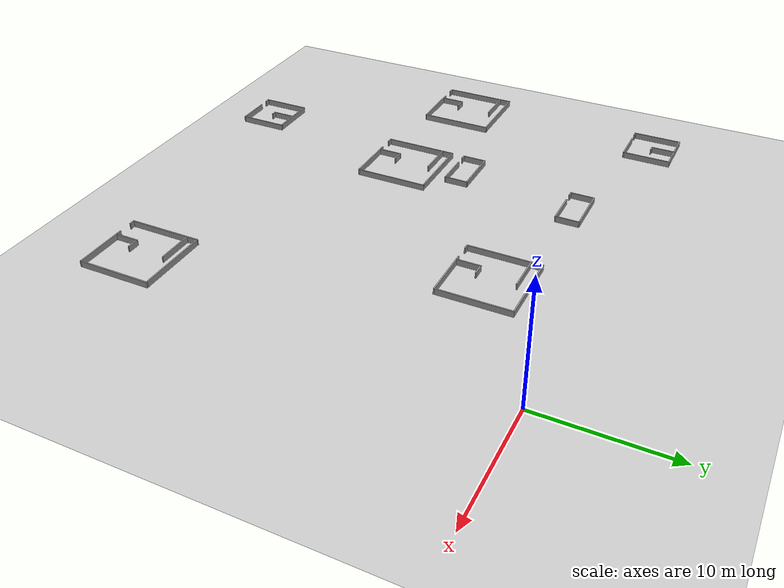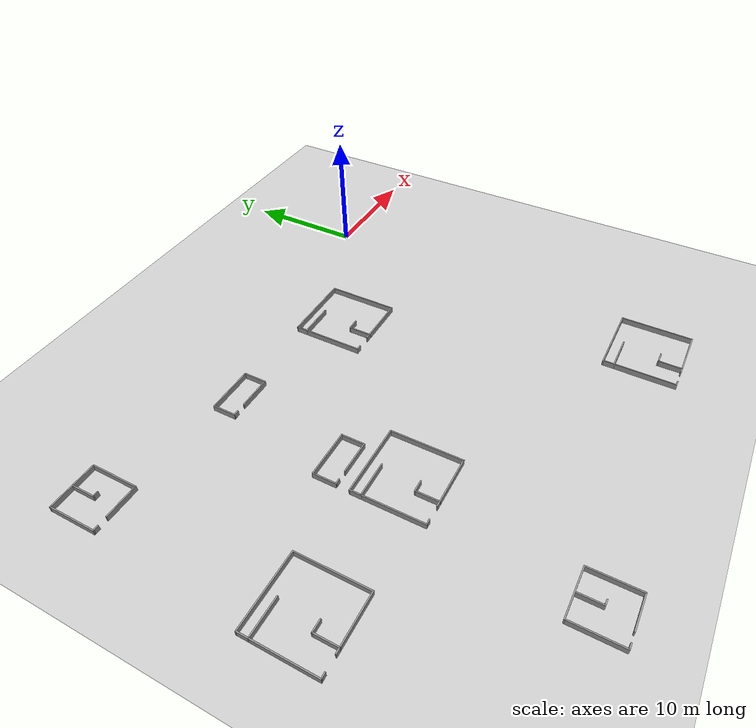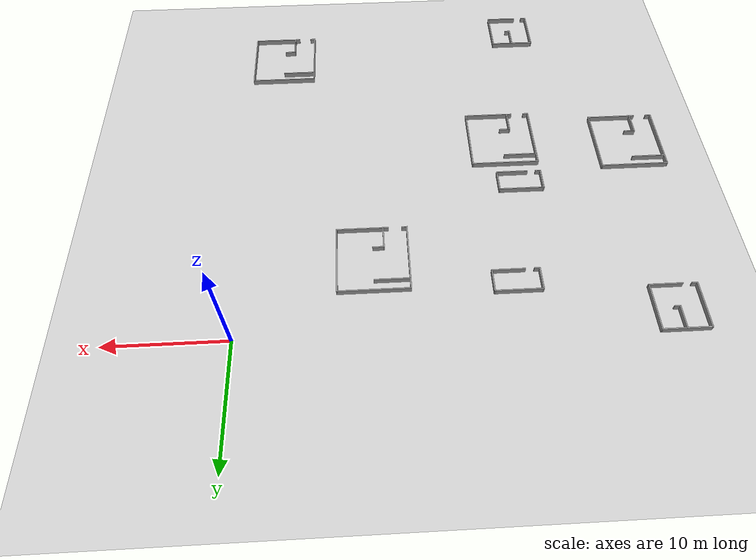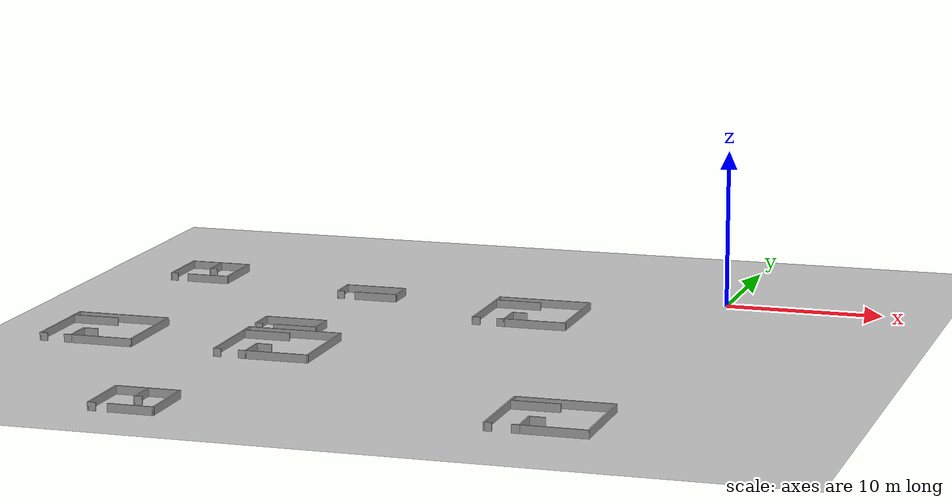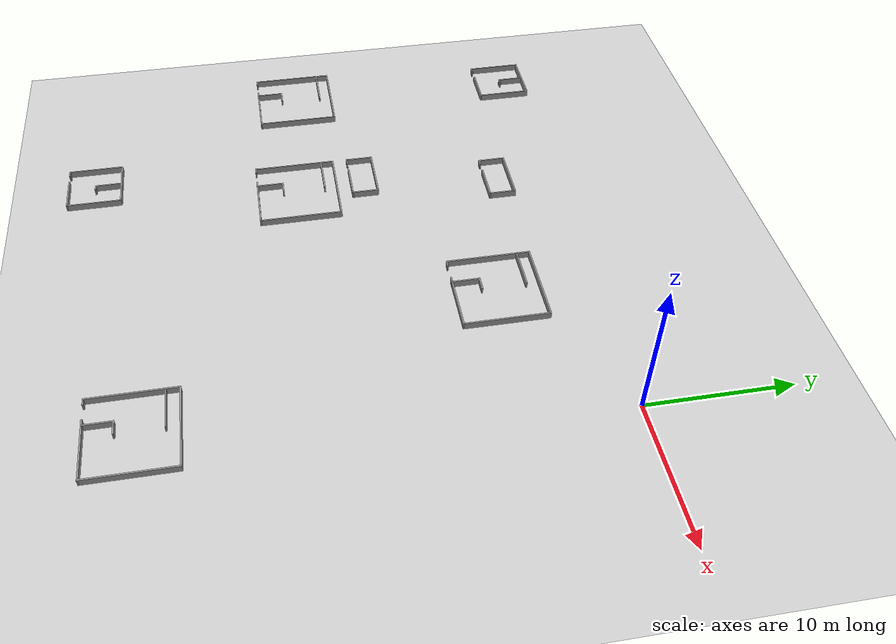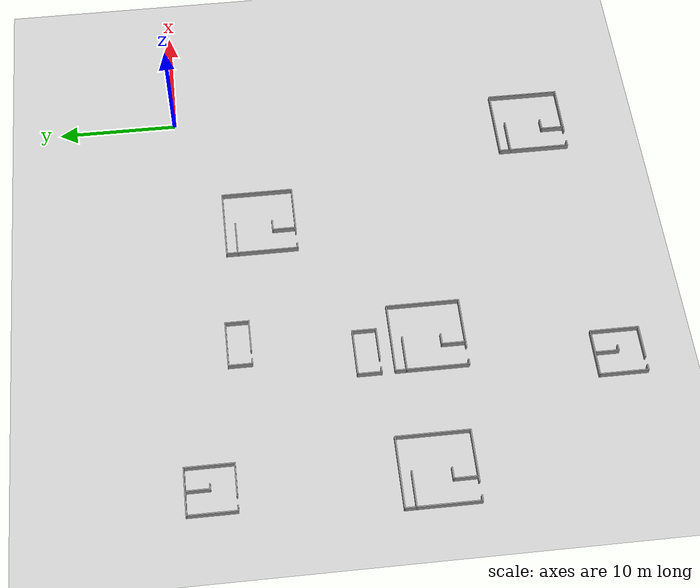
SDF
<sdf version="1.6">
 <world name="default">
  <model name="ground_plane">
   <static>1</static>
   <link name="link">
    <collision name="collision">
     <geometry><plane><normal>0 0 1</normal><size>80 80</size></plane></geometry>
     <surface>
      <contact><collide_bitmask>65535</collide_bitmask></contact>
      <friction><ode><mu>100</mu><mu2>50</mu2></ode></friction>
     </surface>
     <max_contacts>15</max_contacts>
    </collision>
    <visual name="visual">
     <cast_shadows>0</cast_shadows>
     <geometry><plane><normal>0 0 1</normal><size>80 80</size></plane></geometry>
     <material>
      <script><uri>file://media/materials/scripts/gazebo.material</uri><name>Gazebo/Grey</name></script>
     </material>
    </visual>
   </link>
  </model>
  <model name="shape4">
   <pose>-34.8 -1 0 0 -0 0</pose>
   <link name="Wall_0">
    <collision name="Wall_0_Collision">
     <geometry><box><size>4 0.1 0.5</size></box></geometry>
     <pose>0 0 0.25 0 -0 0</pose>
    </collision>
    <visual name="Wall_0_Visual">
     <pose>0 0 0.25 0 -0 0</pose>
     <geometry><box><size>4 0.1 0.5</size></box></geometry>
     <material>
      <script><uri>file://media/materials/scripts/gazebo.material</uri><name>Gazebo/Grey</name></script>
      <ambient>1 1 1 1</ambient>
     </material>
     <meta><layer>0</layer></meta>
    </visual>
    <pose>-1.95 0 0 0 -0 -1.5708</pose>
   </link>
   <link name="Wall_1">
    <collision name="Wall_1_Collision">
     <geometry><box><size>0.5 0.1 0.5</size></box></geometry>
     <pose>0 0 0.25 0 -0 0</pose>
    </collision>
    <visual name="Wall_1_Visual">
     <pose>0 0 0.25 0 -0 0</pose>
     <geometry><box><size>0.5 0.1 0.5</size></box></geometry>
     <material>
      <script><uri>file://media/materials/scripts/gazebo.material</uri><name>Gazebo/Grey</name></script>
      <ambient>1 1 1 1</ambient>
     </material>
     <meta><layer>0</layer></meta>
    </visual>
    <pose>-1.75 -1.95 0 0 -0 0</pose>
   </link>
   <link name="Wall_3">
    <collision name="Wall_3_Collision">
     <geometry><box><size>4 0.1 0.5</size></box></geometry>
     <pose>0 0 0.25 0 -0 0</pose>
    </collision>
    <visual name="Wall_3_Visual">
     <pose>0 0 0.25 0 -0 0</pose>
     <geometry><box><size>4 0.1 0.5</size></box></geometry>
     <material>
      <script><uri>file://media/materials/scripts/gazebo.material</uri><name>Gazebo/Grey</name></script>
      <ambient>1 1 1 1</ambient>
     </material>
     <meta><layer>0</layer></meta>
    </visual>
    <pose>0 1.95 0 0 -0 0</pose>
   </link>
   <link name="Wall_4">
    <collision name="Wall_4_Collision">
     <geometry><box><size>4 0.1 0.5</size></box></geometry>
     <pose>0 0 0.25 0 -0 0</pose>
    </collision>
    <visual name="Wall_4_Visual">
     <pose>0 0 0.25 0 -0 0</pose>
     <geometry><box><size>4 0.1 0.5</size></box></geometry>
     <material>
      <script><uri>file://media/materials/scripts/gazebo.material</uri><name>Gazebo/Grey</name></script>
      <ambient>1 1 1 1</ambient>
     </material>
     <meta><layer>0</layer></meta>
    </visual>
    <pose>1.95 0 0 0 -0 -1.5708</pose>
   </link>
   <link name="Wall_5">
    <collision name="Wall_5_Collision">
     <geometry><box><size>2.8 0.1 0.5</size></box></geometry>
     <pose>0 0 0.25 0 -0 0</pose>
    </collision>
    <visual name="Wall_5_Visual">
     <pose>0 0 0.25 0 -0 0</pose>
     <geometry><box><size>2.8 0.1 0.5</size></box></geometry>
     <material>
      <script><uri>file://media/materials/scripts/gazebo.material</uri><name>Gazebo/Grey</name></script>
      <ambient>1 1 1 1</ambient>
     </material>
     <meta><layer>0</layer></meta>
    </visual>
    <pose>0.6 -1.95 0 0 -0 3.14159</pose>
   </link>
   <link name="Wall_7">
    <collision name="Wall_7_Collision">
     <geometry><box><size>2 0.1 0.5</size></box></geometry>
     <pose>0 0 0.25 0 -0 0</pose>
    </collision>
    <visual name="Wall_7_Visual">
     <pose>0 0 0.25 0 -0 0</pose>
     <geometry><box><size>2 0.1 0.5</size></box></geometry>
     <material>
      <script><uri>file://media/materials/scripts/gazebo.material</uri><name>Gazebo/Grey</name></script>
      <ambient>1 1 1 1</ambient>
     </material>
     <meta><layer>0</layer></meta>
    </visual>
    <pose>0.015 0.991 0 0 -0 -1.5708</pose>
   </link>
   <link name="Wall_8">
    <collision name="Wall_8_Collision">
     <geometry><box><size>0.5 0.1 0.5</size></box></geometry>
     <pose>0 0 0.25 0 -0 0</pose>
    </collision>
    <visual name="Wall_8_Visual">
     <pose>0 0 0.25 0 -0 0</pose>
     <geometry><box><size>0.5 0.1 0.5</size></box></geometry>
     <material>
      <script><uri>file://media/materials/scripts/gazebo.material</uri><name>Gazebo/Grey</name></script>
      <ambient>1 1 1 1</ambient>
     </material>
     <meta><layer>0</layer></meta>
    </visual>
    <pose>0.215 0.041 0 0 -0 0</pose>
   </link>
   <static>1</static>
  </model>
  <model name="shape5">
   <pose>-2.9 -30.9 0 0 -0 0</pose>
   <link name="Wall_10">
    <collision name="Wall_10_Collision">
     <geometry><box><size>6 0.1 0.5</size></box></geometry>
     <pose>0 0 0.25 0 -0 0</pose>
    </collision>
    <visual name="Wall_10_Visual">
     <pose>0 0 0.25 0 -0 0</pose>
     <geometry><box><size>6 0.1 0.5</size></box></geometry>
     <material>
      <script><uri>file://media/materials/scripts/gazebo.material</uri><name>Gazebo/Grey</name></script>
      <ambient>1 1 1 1</ambient>
     </material>
     <meta><layer>0</layer></meta>
    </visual>
    <pose>-0 2.95 0 0 -0 0</pose>
   </link>
   <link name="Wall_11">
    <collision name="Wall_11_Collision">
     <geometry><box><size>6 0.1 0.5</size></box></geometry>
     <pose>0 0 0.25 0 -0 0</pose>
    </collision>
    <visual name="Wall_11_Visual">
     <pose>0 0 0.25 0 -0 0</pose>
     <geometry><box><size>6 0.1 0.5</size></box></geometry>
     <material>
      <script><uri>file://media/materials/scripts/gazebo.material</uri><name>Gazebo/Grey</name></script>
      <ambient>1 1 1 1</ambient>
     </material>
     <meta><layer>0</layer></meta>
    </visual>
    <pose>2.95 0 0 0 -0 -1.5708</pose>
   </link>
   <link name="Wall_12">
    <collision name="Wall_12_Collision">
     <geometry><box><size>4 0.1 0.5</size></box></geometry>
     <pose>0 0 0.25 0 -0 0</pose>
    </collision>
    <visual name="Wall_12_Visual">
     <pose>0 0 0.25 0 -0 0</pose>
     <geometry><box><size>4 0.1 0.5</size></box></geometry>
     <material>
      <script><uri>file://media/materials/scripts/gazebo.material</uri><name>Gazebo/Grey</name></script>
      <ambient>1 1 1 1</ambient>
     </material>
     <meta><layer>0</layer></meta>
    </visual>
    <pose>1 -2.95 0 0 -0 3.14159</pose>
   </link>
   <link name="Wall_13">
    <collision name="Wall_13_Collision">
     <geometry><box><size>2 0.1 0.5</size></box></geometry>
     <pose>0 0 0.25 0 -0 0</pose>
    </collision>
    <visual name="Wall_13_Visual">
     <pose>0 0 0.25 0 -0 0</pose>
     <geometry><box><size>2 0.1 0.5</size></box></geometry>
     <material>
      <script><uri>file://media/materials/scripts/gazebo.material</uri><name>Gazebo/Grey</name></script>
      <ambient>1 1 1 1</ambient>
     </material>
     <meta><layer>0</layer></meta>
    </visual>
    <pose>-0.95 -2 0 0 -0 1.5708</pose>
   </link>
   <link name="Wall_14">
    <collision name="Wall_14_Collision">
     <geometry><box><size>1.00029 0.1 0.5</size></box></geometry>
     <pose>0 0 0.25 0 -0 0</pose>
    </collision>
    <visual name="Wall_14_Visual">
     <pose>0 0 0.25 0 -0 0</pose>
     <geometry><box><size>1.00029 0.1 0.5</size></box></geometry>
     <material>
      <script><uri>file://media/materials/scripts/gazebo.material</uri><name>Gazebo/Grey</name></script>
      <ambient>1 1 1 1</ambient>
     </material>
     <meta><layer>0</layer></meta>
    </visual>
    <pose>-0.5 -1.05 0 0 -0 0</pose>
   </link>
   <link name="Wall_18">
    <collision name="Wall_18_Collision">
     <geometry><box><size>1 0.1 0.5</size></box></geometry>
     <pose>0 0 0.25 0 -0 0</pose>
    </collision>
    <visual name="Wall_18_Visual">
     <pose>0 0 0.25 0 -0 0</pose>
     <geometry><box><size>1 0.1 0.5</size></box></geometry>
     <material>
      <script><uri>file://media/materials/scripts/gazebo.material</uri><name>Gazebo/Grey</name></script>
      <ambient>1 1 1 1</ambient>
     </material>
     <meta><layer>0</layer></meta>
    </visual>
    <pose>-2.95 2.5 0 0 -0 -1.5708</pose>
   </link>
   <link name="Wall_19">
    <collision name="Wall_19_Collision">
     <geometry><box><size>3 0.1 0.5</size></box></geometry>
     <pose>0 0 0.25 0 -0 0</pose>
    </collision>
    <visual name="Wall_19_Visual">
     <pose>0 0 0.25 0 -0 0</pose>
     <geometry><box><size>3 0.1 0.5</size></box></geometry>
     <material>
      <script><uri>file://media/materials/scripts/gazebo.material</uri><name>Gazebo/Grey</name></script>
      <ambient>1 1 1 1</ambient>
     </material>
     <meta><layer>0</layer></meta>
    </visual>
    <pose>-1.5 2.05 0 0 -0 0</pose>
   </link>
   <link name="Wall_21">
    <collision name="Wall_21_Collision">
     <geometry><box><size>5.1 0.1 0.5</size></box></geometry>
     <pose>0 0 0.25 0 -0 0</pose>
    </collision>
    <visual name="Wall_21_Visual">
     <pose>0 0 0.25 0 -0 0</pose>
     <geometry><box><size>5.1 0.1 0.5</size></box></geometry>
     <material>
      <script><uri>file://media/materials/scripts/gazebo.material</uri><name>Gazebo/Grey</name></script>
      <ambient>1 1 1 1</ambient>
     </material>
     <meta><layer>0</layer></meta>
    </visual>
    <pose>-2.95 -0.45 0 0 -0 -1.5708</pose>
   </link>
   <link name="Wall_22">
    <collision name="Wall_22_Collision">
     <geometry><box><size>0.5 0.1 0.5</size></box></geometry>
     <pose>0 0 0.25 0 -0 0</pose>
    </collision>
    <visual name="Wall_22_Visual">
     <pose>0 0 0.25 0 -0 0</pose>
     <geometry><box><size>0.5 0.1 0.5</size></box></geometry>
     <material>
      <script><uri>file://media/materials/scripts/gazebo.material</uri><name>Gazebo/Grey</name></script>
      <ambient>1 1 1 1</ambient>
     </material>
     <meta><layer>0</layer></meta>
    </visual>
    <pose>-2.75 -2.95 0 0 -0 0</pose>
   </link>
   <link name="Wall_24">
    <collision name="Wall_24_Collision">
     <geometry><box><size>0.5 0.1 0.5</size></box></geometry>
     <pose>0 0 0.25 0 -0 0</pose>
    </collision>
    <visual name="Wall_24_Visual">
     <pose>0 0 0.25 0 -0 0</pose>
     <geometry><box><size>0.5 0.1 0.5</size></box></geometry>
     <material>
      <script><uri>file://media/materials/scripts/gazebo.material</uri><name>Gazebo/Grey</name></script>
      <ambient>1 1 1 1</ambient>
     </material>
     <meta><layer>0</layer></meta>
    </visual>
    <pose>-1.15 -2.95 0 0 -0 3.14159</pose>
   </link>
   <static>1</static>
  </model>
  <model name="shape5">
   <pose>-11 -6.6 0 0 -0 0</pose>
   <link name="Wall_10">
    <collision name="Wall_10_Collision">
     <geometry><box><size>6 0.1 0.5</size></box></geometry>
     <pose>0 0 0.25 0 -0 0</pose>
    </collision>
    <visual name="Wall_10_Visual">
     <pose>0 0 0.25 0 -0 0</pose>
     <geometry><box><size>6 0.1 0.5</size></box></geometry>
     <material>
      <script><uri>file://media/materials/scripts/gazebo.material</uri><name>Gazebo/Grey</name></script>
      <ambient>1 1 1 1</ambient>
     </material>
     <meta><layer>0</layer></meta>
    </visual>
    <pose>-0 2.95 0 0 -0 0</pose>
   </link>
   <link name="Wall_11">
    <collision name="Wall_11_Collision">
     <geometry><box><size>6 0.1 0.5</size></box></geometry>
     <pose>0 0 0.25 0 -0 0</pose>
    </collision>
    <visual name="Wall_11_Visual">
     <pose>0 0 0.25 0 -0 0</pose>
     <geometry><box><size>6 0.1 0.5</size></box></geometry>
     <material>
      <script><uri>file://media/materials/scripts/gazebo.material</uri><name>Gazebo/Grey</name></script>
      <ambient>1 1 1 1</ambient>
     </material>
     <meta><layer>0</layer></meta>
    </visual>
    <pose>2.95 0 0 0 -0 -1.5708</pose>
   </link>
   <link name="Wall_12">
    <collision name="Wall_12_Collision">
     <geometry><box><size>4 0.1 0.5</size></box></geometry>
     <pose>0 0 0.25 0 -0 0</pose>
    </collision>
    <visual name="Wall_12_Visual">
     <pose>0 0 0.25 0 -0 0</pose>
     <geometry><box><size>4 0.1 0.5</size></box></geometry>
     <material>
      <script><uri>file://media/materials/scripts/gazebo.material</uri><name>Gazebo/Grey</name></script>
      <ambient>1 1 1 1</ambient>
     </material>
     <meta><layer>0</layer></meta>
    </visual>
    <pose>1 -2.95 0 0 -0 3.14159</pose>
   </link>
   <link name="Wall_13">
    <collision name="Wall_13_Collision">
     <geometry><box><size>2 0.1 0.5</size></box></geometry>
     <pose>0 0 0.25 0 -0 0</pose>
    </collision>
    <visual name="Wall_13_Visual">
     <pose>0 0 0.25 0 -0 0</pose>
     <geometry><box><size>2 0.1 0.5</size></box></geometry>
     <material>
      <script><uri>file://media/materials/scripts/gazebo.material</uri><name>Gazebo/Grey</name></script>
      <ambient>1 1 1 1</ambient>
     </material>
     <meta><layer>0</layer></meta>
    </visual>
    <pose>-0.95 -2 0 0 -0 1.5708</pose>
   </link>
   <link name="Wall_14">
    <collision name="Wall_14_Collision">
     <geometry><box><size>1.00029 0.1 0.5</size></box></geometry>
     <pose>0 0 0.25 0 -0 0</pose>
    </collision>
    <visual name="Wall_14_Visual">
     <pose>0 0 0.25 0 -0 0</pose>
     <geometry><box><size>1.00029 0.1 0.5</size></box></geometry>
     <material>
      <script><uri>file://media/materials/scripts/gazebo.material</uri><name>Gazebo/Grey</name></script>
      <ambient>1 1 1 1</ambient>
     </material>
     <meta><layer>0</layer></meta>
    </visual>
    <pose>-0.5 -1.05 0 0 -0 0</pose>
   </link>
   <link name="Wall_18">
    <collision name="Wall_18_Collision">
     <geometry><box><size>1 0.1 0.5</size></box></geometry>
     <pose>0 0 0.25 0 -0 0</pose>
    </collision>
    <visual name="Wall_18_Visual">
     <pose>0 0 0.25 0 -0 0</pose>
     <geometry><box><size>1 0.1 0.5</size></box></geometry>
     <material>
      <script><uri>file://media/materials/scripts/gazebo.material</uri><name>Gazebo/Grey</name></script>
      <ambient>1 1 1 1</ambient>
     </material>
     <meta><layer>0</layer></meta>
    </visual>
    <pose>-2.95 2.5 0 0 -0 -1.5708</pose>
   </link>
   <link name="Wall_19">
    <collision name="Wall_19_Collision">
     <geometry><box><size>3 0.1 0.5</size></box></geometry>
     <pose>0 0 0.25 0 -0 0</pose>
    </collision>
    <visual name="Wall_19_Visual">
     <pose>0 0 0.25 0 -0 0</pose>
     <geometry><box><size>3 0.1 0.5</size></box></geometry>
     <material>
      <script><uri>file://media/materials/scripts/gazebo.material</uri><name>Gazebo/Grey</name></script>
      <ambient>1 1 1 1</ambient>
     </material>
     <meta><layer>0</layer></meta>
    </visual>
    <pose>-1.5 2.05 0 0 -0 0</pose>
   </link>
   <link name="Wall_21">
    <collision name="Wall_21_Collision">
     <geometry><box><size>5.1 0.1 0.5</size></box></geometry>
     <pose>0 0 0.25 0 -0 0</pose>
    </collision>
    <visual name="Wall_21_Visual">
     <pose>0 0 0.25 0 -0 0</pose>
     <geometry><box><size>5.1 0.1 0.5</size></box></geometry>
     <material>
      <script><uri>file://media/materials/scripts/gazebo.material</uri><name>Gazebo/Grey</name></script>
      <ambient>1 1 1 1</ambient>
     </material>
     <meta><layer>0</layer></meta>
    </visual>
    <pose>-2.95 -0.45 0 0 -0 -1.5708</pose>
   </link>
   <link name="Wall_22">
    <collision name="Wall_22_Collision">
     <geometry><box><size>0.5 0.1 0.5</size></box></geometry>
     <pose>0 0 0.25 0 -0 0</pose>
    </collision>
    <visual name="Wall_22_Visual">
     <pose>0 0 0.25 0 -0 0</pose>
     <geometry><box><size>0.5 0.1 0.5</size></box></geometry>
     <material>
      <script><uri>file://media/materials/scripts/gazebo.material</uri><name>Gazebo/Grey</name></script>
      <ambient>1 1 1 1</ambient>
     </material>
     <meta><layer>0</layer></meta>
    </visual>
    <pose>-2.75 -2.95 0 0 -0 0</pose>
   </link>
   <link name="Wall_24">
    <collision name="Wall_24_Collision">
     <geometry><box><size>0.5 0.1 0.5</size></box></geometry>
     <pose>0 0 0.25 0 -0 0</pose>
    </collision>
    <visual name="Wall_24_Visual">
     <pose>0 0 0.25 0 -0 0</pose>
     <geometry><box><size>0.5 0.1 0.5</size></box></geometry>
     <material>
      <script><uri>file://media/materials/scripts/gazebo.material</uri><name>Gazebo/Grey</name></script>
      <ambient>1 1 1 1</ambient>
     </material>
     <meta><layer>0</layer></meta>
    </visual>
    <pose>-1.15 -2.95 0 0 -0 3.14159</pose>
   </link>
   <static>1</static>
  </model>
  <model name="shape5">
   <pose>-23.3 -19.1 0 0 -0 0</pose>
   <link name="Wall_10">
    <collision name="Wall_10_Collision">
     <geometry><box><size>6 0.1 0.5</size></box></geometry>
     <pose>0 0 0.25 0 -0 0</pose>
    </collision>
    <visual name="Wall_10_Visual">
     <pose>0 0 0.25 0 -0 0</pose>
     <geometry><box><size>6 0.1 0.5</size></box></geometry>
     <material>
      <script><uri>file://media/materials/scripts/gazebo.material</uri><name>Gazebo/Grey</name></script>
      <ambient>1 1 1 1</ambient>
     </material>
     <meta><layer>0</layer></meta>
    </visual>
    <pose>-0 2.95 0 0 -0 0</pose>
   </link>
   <link name="Wall_11">
    <collision name="Wall_11_Collision">
     <geometry><box><size>6 0.1 0.5</size></box></geometry>
     <pose>0 0 0.25 0 -0 0</pose>
    </collision>
    <visual name="Wall_11_Visual">
     <pose>0 0 0.25 0 -0 0</pose>
     <geometry><box><size>6 0.1 0.5</size></box></geometry>
     <material>
      <script><uri>file://media/materials/scripts/gazebo.material</uri><name>Gazebo/Grey</name></script>
      <ambient>1 1 1 1</ambient>
     </material>
     <meta><layer>0</layer></meta>
    </visual>
    <pose>2.95 0 0 0 -0 -1.5708</pose>
   </link>
   <link name="Wall_12">
    <collision name="Wall_12_Collision">
     <geometry><box><size>4 0.1 0.5</size></box></geometry>
     <pose>0 0 0.25 0 -0 0</pose>
    </collision>
    <visual name="Wall_12_Visual">
     <pose>0 0 0.25 0 -0 0</pose>
     <geometry><box><size>4 0.1 0.5</size></box></geometry>
     <material>
      <script><uri>file://media/materials/scripts/gazebo.material</uri><name>Gazebo/Grey</name></script>
      <ambient>1 1 1 1</ambient>
     </material>
     <meta><layer>0</layer></meta>
    </visual>
    <pose>1 -2.95 0 0 -0 3.14159</pose>
   </link>
   <link name="Wall_13">
    <collision name="Wall_13_Collision">
     <geometry><box><size>2 0.1 0.5</size></box></geometry>
     <pose>0 0 0.25 0 -0 0</pose>
    </collision>
    <visual name="Wall_13_Visual">
     <pose>0 0 0.25 0 -0 0</pose>
     <geometry><box><size>2 0.1 0.5</size></box></geometry>
     <material>
      <script><uri>file://media/materials/scripts/gazebo.material</uri><name>Gazebo/Grey</name></script>
      <ambient>1 1 1 1</ambient>
     </material>
     <meta><layer>0</layer></meta>
    </visual>
    <pose>-0.95 -2 0 0 -0 1.5708</pose>
   </link>
   <link name="Wall_14">
    <collision name="Wall_14_Collision">
     <geometry><box><size>1.00029 0.1 0.5</size></box></geometry>
     <pose>0 0 0.25 0 -0 0</pose>
    </collision>
    <visual name="Wall_14_Visual">
     <pose>0 0 0.25 0 -0 0</pose>
     <geometry><box><size>1.00029 0.1 0.5</size></box></geometry>
     <material>
      <script><uri>file://media/materials/scripts/gazebo.material</uri><name>Gazebo/Grey</name></script>
      <ambient>1 1 1 1</ambient>
     </material>
     <meta><layer>0</layer></meta>
    </visual>
    <pose>-0.5 -1.05 0 0 -0 0</pose>
   </link>
   <link name="Wall_18">
    <collision name="Wall_18_Collision">
     <geometry><box><size>1 0.1 0.5</size></box></geometry>
     <pose>0 0 0.25 0 -0 0</pose>
    </collision>
    <visual name="Wall_18_Visual">
     <pose>0 0 0.25 0 -0 0</pose>
     <geometry><box><size>1 0.1 0.5</size></box></geometry>
     <material>
      <script><uri>file://media/materials/scripts/gazebo.material</uri><name>Gazebo/Grey</name></script>
      <ambient>1 1 1 1</ambient>
     </material>
     <meta><layer>0</layer></meta>
    </visual>
    <pose>-2.95 2.5 0 0 -0 -1.5708</pose>
   </link>
   <link name="Wall_19">
    <collision name="Wall_19_Collision">
     <geometry><box><size>3 0.1 0.5</size></box></geometry>
     <pose>0 0 0.25 0 -0 0</pose>
    </collision>
    <visual name="Wall_19_Visual">
     <pose>0 0 0.25 0 -0 0</pose>
     <geometry><box><size>3 0.1 0.5</size></box></geometry>
     <material>
      <script><uri>file://media/materials/scripts/gazebo.material</uri><name>Gazebo/Grey</name></script>
      <ambient>1 1 1 1</ambient>
     </material>
     <meta><layer>0</layer></meta>
    </visual>
    <pose>-1.5 2.05 0 0 -0 0</pose>
   </link>
   <link name="Wall_21">
    <collision name="Wall_21_Collision">
     <geometry><box><size>5.1 0.1 0.5</size></box></geometry>
     <pose>0 0 0.25 0 -0 0</pose>
    </collision>
    <visual name="Wall_21_Visual">
     <pose>0 0 0.25 0 -0 0</pose>
     <geometry><box><size>5.1 0.1 0.5</size></box></geometry>
     <material>
      <script><uri>file://media/materials/scripts/gazebo.material</uri><name>Gazebo/Grey</name></script>
      <ambient>1 1 1 1</ambient>
     </material>
     <meta><layer>0</layer></meta>
    </visual>
    <pose>-2.95 -0.45 0 0 -0 -1.5708</pose>
   </link>
   <link name="Wall_22">
    <collision name="Wall_22_Collision">
     <geometry><box><size>0.5 0.1 0.5</size></box></geometry>
     <pose>0 0 0.25 0 -0 0</pose>
    </collision>
    <visual name="Wall_22_Visual">
     <pose>0 0 0.25 0 -0 0</pose>
     <geometry><box><size>0.5 0.1 0.5</size></box></geometry>
     <material>
      <script><uri>file://media/materials/scripts/gazebo.material</uri><name>Gazebo/Grey</name></script>
      <ambient>1 1 1 1</ambient>
     </material>
     <meta><layer>0</layer></meta>
    </visual>
    <pose>-2.75 -2.95 0 0 -0 0</pose>
   </link>
   <link name="Wall_24">
    <collision name="Wall_24_Collision">
     <geometry><box><size>0.5 0.1 0.5</size></box></geometry>
     <pose>0 0 0.25 0 -0 0</pose>
    </collision>
    <visual name="Wall_24_Visual">
     <pose>0 0 0.25 0 -0 0</pose>
     <geometry><box><size>0.5 0.1 0.5</size></box></geometry>
     <material>
      <script><uri>file://media/materials/scripts/gazebo.material</uri><name>Gazebo/Grey</name></script>
      <ambient>1 1 1 1</ambient>
     </material>
     <meta><layer>0</layer></meta>
    </visual>
    <pose>-1.15 -2.95 0 0 -0 3.14159</pose>
   </link>
   <static>1</static>
  </model>
  <model name="shape2">
   <pose>-24.3 -14.1 0 0 -0 0</pose>
   <link name="Wall_0">
    <collision name="Wall_0_Collision">
     <geometry><box><size>3.98685 0.1 0.5</size></box></geometry>
     <pose>0 0 0.25 0 -0 0</pose>
    </collision>
    <visual name="Wall_0_Visual">
     <pose>0 0 0.25 0 -0 0</pose>
     <geometry><box><size>3.98685 0.1 0.5</size></box></geometry>
     <material>
      <script><uri>file://media/materials/scripts/gazebo.material</uri><name>Gazebo/Grey</name></script>
      <ambient>1 1 1 1</ambient>
     </material>
     <meta><layer>0</layer></meta>
    </visual>
    <pose>0.003288 0.95 0 0 -0 0</pose>
   </link>
   <link name="Wall_1">
    <collision name="Wall_1_Collision">
     <geometry><box><size>2 0.1 0.5</size></box></geometry>
     <pose>0 0 0.25 0 -0 0</pose>
    </collision>
    <visual name="Wall_1_Visual">
     <pose>0 0 0.25 0 -0 0</pose>
     <geometry><box><size>2 0.1 0.5</size></box></geometry>
     <material>
      <script><uri>file://media/materials/scripts/gazebo.material</uri><name>Gazebo/Grey</name></script>
      <ambient>1 1 1 1</ambient>
     </material>
     <meta><layer>0</layer></meta>
    </visual>
    <pose>1.94671 0 0 0 -0 -1.5708</pose>
   </link>
   <link name="Wall_2">
    <collision name="Wall_2_Collision">
     <geometry><box><size>2.8 0.1 0.5</size></box></geometry>
     <pose>0 0 0.25 0 -0 0</pose>
    </collision>
    <visual name="Wall_2_Visual">
     <pose>0 0 0.25 0 -0 0</pose>
     <geometry><box><size>2.8 0.1 0.5</size></box></geometry>
     <material>
      <script><uri>file://media/materials/scripts/gazebo.material</uri><name>Gazebo/Grey</name></script>
      <ambient>1 1 1 1</ambient>
     </material>
     <meta><layer>0</layer></meta>
    </visual>
    <pose>0.596712 -0.95 0 0 -0 3.14159</pose>
   </link>
   <link name="Wall_4">
    <collision name="Wall_4_Collision">
     <geometry><box><size>2 0.1 0.5</size></box></geometry>
     <pose>0 0 0.25 0 -0 0</pose>
    </collision>
    <visual name="Wall_4_Visual">
     <pose>0 0 0.25 0 -0 0</pose>
     <geometry><box><size>2 0.1 0.5</size></box></geometry>
     <material>
      <script><uri>file://media/materials/scripts/gazebo.material</uri><name>Gazebo/Grey</name></script>
      <ambient>1 1 1 1</ambient>
     </material>
     <meta><layer>0</layer></meta>
    </visual>
    <pose>-1.94671 0 0 0 -0 -1.5708</pose>
   </link>
   <link name="Wall_5">
    <collision name="Wall_5_Collision">
     <geometry><box><size>0.5 0.1 0.5</size></box></geometry>
     <pose>0 0 0.25 0 -0 0</pose>
    </collision>
    <visual name="Wall_5_Visual">
     <pose>0 0 0.25 0 -0 0</pose>
     <geometry><box><size>0.5 0.1 0.5</size></box></geometry>
     <material>
      <script><uri>file://media/materials/scripts/gazebo.material</uri><name>Gazebo/Grey</name></script>
      <ambient>1 1 1 1</ambient>
     </material>
     <meta><layer>0</layer></meta>
    </visual>
    <pose>-1.74671 -0.95 0 0 -0 0</pose>
   </link>
   <static>1</static>
  </model>
  <model name="shape2">
   <pose>-22.5 -4 0 0 -0 0</pose>
   <link name="Wall_0">
    <collision name="Wall_0_Collision">
     <geometry><box><size>3.98685 0.1 0.5</size></box></geometry>
     <pose>0 0 0.25 0 -0 0</pose>
    </collision>
    <visual name="Wall_0_Visual">
     <pose>0 0 0.25 0 -0 0</pose>
     <geometry><box><size>3.98685 0.1 0.5</size></box></geometry>
     <material>
      <script><uri>file://media/materials/scripts/gazebo.material</uri><name>Gazebo/Grey</name></script>
      <ambient>1 1 1 1</ambient>
     </material>
     <meta><layer>0</layer></meta>
    </visual>
    <pose>0.003288 0.95 0 0 -0 0</pose>
   </link>
   <link name="Wall_1">
    <collision name="Wall_1_Collision">
     <geometry><box><size>2 0.1 0.5</size></box></geometry>
     <pose>0 0 0.25 0 -0 0</pose>
    </collision>
    <visual name="Wall_1_Visual">
     <pose>0 0 0.25 0 -0 0</pose>
     <geometry><box><size>2 0.1 0.5</size></box></geometry>
     <material>
      <script><uri>file://media/materials/scripts/gazebo.material</uri><name>Gazebo/Grey</name></script>
      <ambient>1 1 1 1</ambient>
     </material>
     <meta><layer>0</layer></meta>
    </visual>
    <pose>1.94671 0 0 0 -0 -1.5708</pose>
   </link>
   <link name="Wall_2">
    <collision name="Wall_2_Collision">
     <geometry><box><size>2.8 0.1 0.5</size></box></geometry>
     <pose>0 0 0.25 0 -0 0</pose>
    </collision>
    <visual name="Wall_2_Visual">
     <pose>0 0 0.25 0 -0 0</pose>
     <geometry><box><size>2.8 0.1 0.5</size></box></geometry>
     <material>
      <script><uri>file://media/materials/scripts/gazebo.material</uri><name>Gazebo/Grey</name></script>
      <ambient>1 1 1 1</ambient>
     </material>
     <meta><layer>0</layer></meta>
    </visual>
    <pose>0.596712 -0.95 0 0 -0 3.14159</pose>
   </link>
   <link name="Wall_4">
    <collision name="Wall_4_Collision">
     <geometry><box><size>2 0.1 0.5</size></box></geometry>
     <pose>0 0 0.25 0 -0 0</pose>
    </collision>
    <visual name="Wall_4_Visual">
     <pose>0 0 0.25 0 -0 0</pose>
     <geometry><box><size>2 0.1 0.5</size></box></geometry>
     <material>
      <script><uri>file://media/materials/scripts/gazebo.material</uri><name>Gazebo/Grey</name></script>
      <ambient>1 1 1 1</ambient>
     </material>
     <meta><layer>0</layer></meta>
    </visual>
    <pose>-1.94671 0 0 0 -0 -1.5708</pose>
   </link>
   <link name="Wall_5">
    <collision name="Wall_5_Collision">
     <geometry><box><size>0.5 0.1 0.5</size></box></geometry>
     <pose>0 0 0.25 0 -0 0</pose>
    </collision>
    <visual name="Wall_5_Visual">
     <pose>0 0 0.25 0 -0 0</pose>
     <geometry><box><size>0.5 0.1 0.5</size></box></geometry>
     <material>
      <script><uri>file://media/materials/scripts/gazebo.material</uri><name>Gazebo/Grey</name></script>
      <ambient>1 1 1 1</ambient>
     </material>
     <meta><layer>0</layer></meta>
    </visual>
    <pose>-1.74671 -0.95 0 0 -0 0</pose>
   </link>
   <static>1</static>
  </model>
  <model name="shape4">
   <pose>-26.3 -34.1 0 0 -0 0</pose>
   <link name="Wall_0">
    <collision name="Wall_0_Collision">
     <geometry><box><size>4 0.1 0.5</size></box></geometry>
     <pose>0 0 0.25 0 -0 0</pose>
    </collision>
    <visual name="Wall_0_Visual">
     <pose>0 0 0.25 0 -0 0</pose>
     <geometry><box><size>4 0.1 0.5</size></box></geometry>
     <material>
      <script><uri>file://media/materials/scripts/gazebo.material</uri><name>Gazebo/Grey</name></script>
      <ambient>1 1 1 1</ambient>
     </material>
     <meta><layer>0</layer></meta>
    </visual>
    <pose>-1.95 0 0 0 -0 -1.5708</pose>
   </link>
   <link name="Wall_1">
    <collision name="Wall_1_Collision">
     <geometry><box><size>0.5 0.1 0.5</size></box></geometry>
     <pose>0 0 0.25 0 -0 0</pose>
    </collision>
    <visual name="Wall_1_Visual">
     <pose>0 0 0.25 0 -0 0</pose>
     <geometry><box><size>0.5 0.1 0.5</size></box></geometry>
     <material>
      <script><uri>file://media/materials/scripts/gazebo.material</uri><name>Gazebo/Grey</name></script>
      <ambient>1 1 1 1</ambient>
     </material>
     <meta><layer>0</layer></meta>
    </visual>
    <pose>-1.75 -1.95 0 0 -0 0</pose>
   </link>
   <link name="Wall_3">
    <collision name="Wall_3_Collision">
     <geometry><box><size>4 0.1 0.5</size></box></geometry>
     <pose>0 0 0.25 0 -0 0</pose>
    </collision>
    <visual name="Wall_3_Visual">
     <pose>0 0 0.25 0 -0 0</pose>
     <geometry><box><size>4 0.1 0.5</size></box></geometry>
     <material>
      <script><uri>file://media/materials/scripts/gazebo.material</uri><name>Gazebo/Grey</name></script>
      <ambient>1 1 1 1</ambient>
     </material>
     <meta><layer>0</layer></meta>
    </visual>
    <pose>0 1.95 0 0 -0 0</pose>
   </link>
   <link name="Wall_4">
    <collision name="Wall_4_Collision">
     <geometry><box><size>4 0.1 0.5</size></box></geometry>
     <pose>0 0 0.25 0 -0 0</pose>
    </collision>
    <visual name="Wall_4_Visual">
     <pose>0 0 0.25 0 -0 0</pose>
     <geometry><box><size>4 0.1 0.5</size></box></geometry>
     <material>
      <script><uri>file://media/materials/scripts/gazebo.material</uri><name>Gazebo/Grey</name></script>
      <ambient>1 1 1 1</ambient>
     </material>
     <meta><layer>0</layer></meta>
    </visual>
    <pose>1.95 0 0 0 -0 -1.5708</pose>
   </link>
   <link name="Wall_5">
    <collision name="Wall_5_Collision">
     <geometry><box><size>2.8 0.1 0.5</size></box></geometry>
     <pose>0 0 0.25 0 -0 0</pose>
    </collision>
    <visual name="Wall_5_Visual">
     <pose>0 0 0.25 0 -0 0</pose>
     <geometry><box><size>2.8 0.1 0.5</size></box></geometry>
     <material>
      <script><uri>file://media/materials/scripts/gazebo.material</uri><name>Gazebo/Grey</name></script>
      <ambient>1 1 1 1</ambient>
     </material>
     <meta><layer>0</layer></meta>
    </visual>
    <pose>0.6 -1.95 0 0 -0 3.14159</pose>
   </link>
   <link name="Wall_7">
    <collision name="Wall_7_Collision">
     <geometry><box><size>2 0.1 0.5</size></box></geometry>
     <pose>0 0 0.25 0 -0 0</pose>
    </collision>
    <visual name="Wall_7_Visual">
     <pose>0 0 0.25 0 -0 0</pose>
     <geometry><box><size>2 0.1 0.5</size></box></geometry>
     <material>
      <script><uri>file://media/materials/scripts/gazebo.material</uri><name>Gazebo/Grey</name></script>
      <ambient>1 1 1 1</ambient>
     </material>
     <meta><layer>0</layer></meta>
    </visual>
    <pose>0.015 0.991 0 0 -0 -1.5708</pose>
   </link>
   <link name="Wall_8">
    <collision name="Wall_8_Collision">
     <geometry><box><size>0.5 0.1 0.5</size></box></geometry>
     <pose>0 0 0.25 0 -0 0</pose>
    </collision>
    <visual name="Wall_8_Visual">
     <pose>0 0 0.25 0 -0 0</pose>
     <geometry><box><size>0.5 0.1 0.5</size></box></geometry>
     <material>
      <script><uri>file://media/materials/scripts/gazebo.material</uri><name>Gazebo/Grey</name></script>
      <ambient>1 1 1 1</ambient>
     </material>
     <meta><layer>0</layer></meta>
    </visual>
    <pose>0.215 0.041 0 0 -0 0</pose>
   </link>
   <static>1</static>
  </model>
  <model name="shape5">
   <pose>-34.9 -18.3 0 0 -0 0</pose>
   <link name="Wall_10">
    <collision name="Wall_10_Collision">
     <geometry><box><size>6 0.1 0.5</size></box></geometry>
     <pose>0 0 0.25 0 -0 0</pose>
    </collision>
    <visual name="Wall_10_Visual">
     <pose>0 0 0.25 0 -0 0</pose>
     <geometry><box><size>6 0.1 0.5</size></box></geometry>
     <material>
      <script><uri>file://media/materials/scripts/gazebo.material</uri><name>Gazebo/Grey</name></script>
      <ambient>1 1 1 1</ambient>
     </material>
     <meta><layer>0</layer></meta>
    </visual>
    <pose>-0 2.95 0 0 -0 0</pose>
   </link>
   <link name="Wall_11">
    <collision name="Wall_11_Collision">
     <geometry><box><size>6 0.1 0.5</size></box></geometry>
     <pose>0 0 0.25 0 -0 0</pose>
    </collision>
    <visual name="Wall_11_Visual">
     <pose>0 0 0.25 0 -0 0</pose>
     <geometry><box><size>6 0.1 0.5</size></box></geometry>
     <material>
      <script><uri>file://media/materials/scripts/gazebo.material</uri><name>Gazebo/Grey</name></script>
      <ambient>1 1 1 1</ambient>
     </material>
     <meta><layer>0</layer></meta>
    </visual>
    <pose>2.95 0 0 0 -0 -1.5708</pose>
   </link>
   <link name="Wall_12">
    <collision name="Wall_12_Collision">
     <geometry><box><size>4 0.1 0.5</size></box></geometry>
     <pose>0 0 0.25 0 -0 0</pose>
    </collision>
    <visual name="Wall_12_Visual">
     <pose>0 0 0.25 0 -0 0</pose>
     <geometry><box><size>4 0.1 0.5</size></box></geometry>
     <material>
      <script><uri>file://media/materials/scripts/gazebo.material</uri><name>Gazebo/Grey</name></script>
      <ambient>1 1 1 1</ambient>
     </material>
     <meta><layer>0</layer></meta>
    </visual>
    <pose>1 -2.95 0 0 -0 3.14159</pose>
   </link>
   <link name="Wall_13">
    <collision name="Wall_13_Collision">
     <geometry><box><size>2 0.1 0.5</size></box></geometry>
     <pose>0 0 0.25 0 -0 0</pose>
    </collision>
    <visual name="Wall_13_Visual">
     <pose>0 0 0.25 0 -0 0</pose>
     <geometry><box><size>2 0.1 0.5</size></box></geometry>
     <material>
      <script><uri>file://media/materials/scripts/gazebo.material</uri><name>Gazebo/Grey</name></script>
      <ambient>1 1 1 1</ambient>
     </material>
     <meta><layer>0</layer></meta>
    </visual>
    <pose>-0.95 -2 0 0 -0 1.5708</pose>
   </link>
   <link name="Wall_14">
    <collision name="Wall_14_Collision">
     <geometry><box><size>1.00029 0.1 0.5</size></box></geometry>
     <pose>0 0 0.25 0 -0 0</pose>
    </collision>
    <visual name="Wall_14_Visual">
     <pose>0 0 0.25 0 -0 0</pose>
     <geometry><box><size>1.00029 0.1 0.5</size></box></geometry>
     <material>
      <script><uri>file://media/materials/scripts/gazebo.material</uri><name>Gazebo/Grey</name></script>
      <ambient>1 1 1 1</ambient>
     </material>
     <meta><layer>0</layer></meta>
    </visual>
    <pose>-0.5 -1.05 0 0 -0 0</pose>
   </link>
   <link name="Wall_18">
    <collision name="Wall_18_Collision">
     <geometry><box><size>1 0.1 0.5</size></box></geometry>
     <pose>0 0 0.25 0 -0 0</pose>
    </collision>
    <visual name="Wall_18_Visual">
     <pose>0 0 0.25 0 -0 0</pose>
     <geometry><box><size>1 0.1 0.5</size></box></geometry>
     <material>
      <script><uri>file://media/materials/scripts/gazebo.material</uri><name>Gazebo/Grey</name></script>
      <ambient>1 1 1 1</ambient>
     </material>
     <meta><layer>0</layer></meta>
    </visual>
    <pose>-2.95 2.5 0 0 -0 -1.5708</pose>
   </link>
   <link name="Wall_19">
    <collision name="Wall_19_Collision">
     <geometry><box><size>3 0.1 0.5</size></box></geometry>
     <pose>0 0 0.25 0 -0 0</pose>
    </collision>
    <visual name="Wall_19_Visual">
     <pose>0 0 0.25 0 -0 0</pose>
     <geometry><box><size>3 0.1 0.5</size></box></geometry>
     <material>
      <script><uri>file://media/materials/scripts/gazebo.material</uri><name>Gazebo/Grey</name></script>
      <ambient>1 1 1 1</ambient>
     </material>
     <meta><layer>0</layer></meta>
    </visual>
    <pose>-1.5 2.05 0 0 -0 0</pose>
   </link>
   <link name="Wall_21">
    <collision name="Wall_21_Collision">
     <geometry><box><size>5.1 0.1 0.5</size></box></geometry>
     <pose>0 0 0.25 0 -0 0</pose>
    </collision>
    <visual name="Wall_21_Visual">
     <pose>0 0 0.25 0 -0 0</pose>
     <geometry><box><size>5.1 0.1 0.5</size></box></geometry>
     <material>
      <script><uri>file://media/materials/scripts/gazebo.material</uri><name>Gazebo/Grey</name></script>
      <ambient>1 1 1 1</ambient>
     </material>
     <meta><layer>0</layer></meta>
    </visual>
    <pose>-2.95 -0.45 0 0 -0 -1.5708</pose>
   </link>
   <link name="Wall_22">
    <collision name="Wall_22_Collision">
     <geometry><box><size>0.5 0.1 0.5</size></box></geometry>
     <pose>0 0 0.25 0 -0 0</pose>
    </collision>
    <visual name="Wall_22_Visual">
     <pose>0 0 0.25 0 -0 0</pose>
     <geometry><box><size>0.5 0.1 0.5</size></box></geometry>
     <material>
      <script><uri>file://media/materials/scripts/gazebo.material</uri><name>Gazebo/Grey</name></script>
      <ambient>1 1 1 1</ambient>
     </material>
     <meta><layer>0</layer></meta>
    </visual>
    <pose>-2.75 -2.95 0 0 -0 0</pose>
   </link>
   <link name="Wall_24">
    <collision name="Wall_24_Collision">
     <geometry><box><size>0.5 0.1 0.5</size></box></geometry>
     <pose>0 0 0.25 0 -0 0</pose>
    </collision>
    <visual name="Wall_24_Visual">
     <pose>0 0 0.25 0 -0 0</pose>
     <geometry><box><size>0.5 0.1 0.5</size></box></geometry>
     <material>
      <script><uri>file://media/materials/scripts/gazebo.material</uri><name>Gazebo/Grey</name></script>
      <ambient>1 1 1 1</ambient>
     </material>
     <meta><layer>0</layer></meta>
    </visual>
    <pose>-1.15 -2.95 0 0 -0 3.14159</pose>
   </link>
   <static>1</static>
  </model>
 </world>
</sdf>
